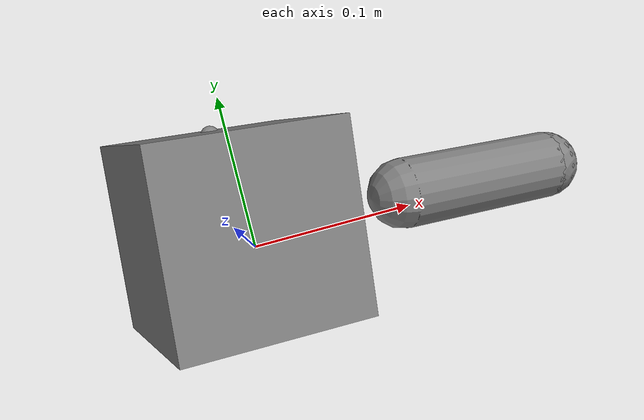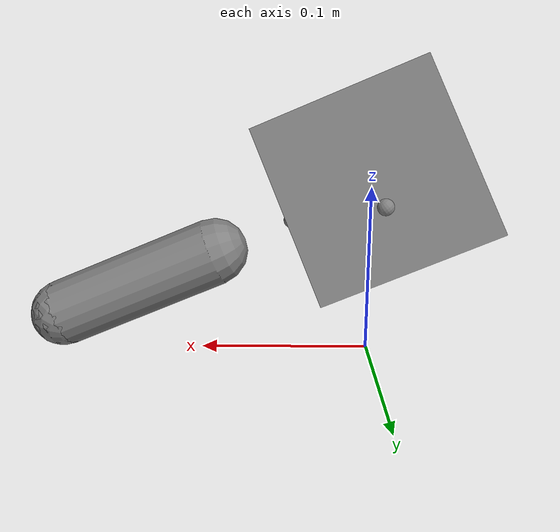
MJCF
<mujoco model="deg_asset">
  <!-- The same shape as rad_asset.xml, written in DEGREES, to be attached
       into a radian scene. -->
  <compiler angle="degree"/>
  <default>
    <joint range="-30 30" ref="6" springref="3"/>
    <geom euler="17 0 0"/>
    <default class="slider">
      <joint type="slide" range="-0.02 0.07"/>
      <default class="slider_ref">
        <joint ref="0.01" springref="0.02"/>
      </default>
    </default>
    <default class="turn">
      <joint type="hinge" range="-70 70" ref="-11"/>
      <site euler="0 14 0"/>
    </default>
  </default>
  <worldbody>
    <body name="root" pos="0 0 0.1" euler="0 23 0">
      <inertial pos="0 0 0" mass="1" diaginertia="0.01 0.01 0.01" euler="6 11 17"/>
      <joint name="h_root" axis="0 1 0"/>
      <geom name="g_root" type="box" size="0.05 0.05 0.05"/>
      <site name="s_root" pos="0.05 0 0" axisangle="0 0 1 40"/>
      <site name="s_turn" class="turn" pos="0 0.05 0"/>
      <camera name="c_root" pos="0 -1 0" euler="69 0 0" fovy="50"/>
      <body name="link" pos="0.1 0 0" childclass="turn">
        <joint name="h_link" axis="0 0 1"/>
        <joint name="h_explicit" type="hinge" axis="1 0 0" range="-115 115" ref="17" springref="-6"/>
        <geom name="g_link" type="capsule" fromto="0 0 0 0.1 0 0" size="0.02" euler="0 0 63"/>
        <body name="tip" pos="0.1 0 0" axisangle="1 0 0 52">
          <joint name="s_tip" class="slider" axis="1 0 0"/>
          <joint name="s_tip2" class="slider_ref" axis="0 1 0"/>
          <joint name="h_odd" type="hinge" class="slider" axis="0 0 1"/>
          <joint name="b_tip" type="ball" range="0 34"/>
          <geom name="g_tip" type="sphere" size="0.02" axisangle="0 1 0 29"/>
        </body>
      </body>
    </body>
  </worldbody>
</mujoco>
